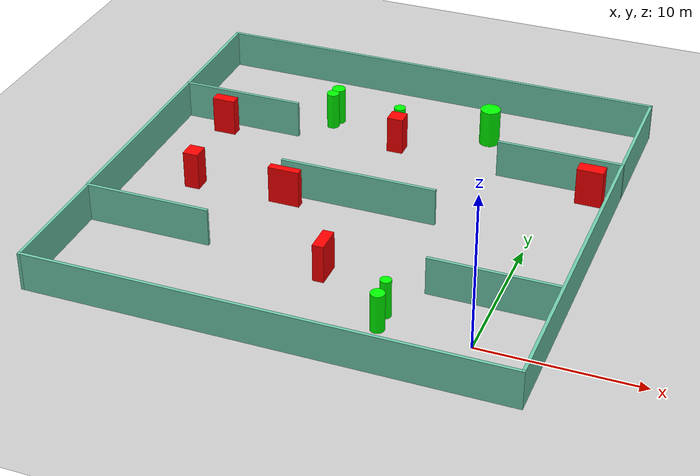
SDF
<sdf version="1.7">
 <world name="default">
  <light name="sun" type="directional">
   <pose>0 0 10 0 -0 0</pose>
   <diffuse>0.8 0.8 0.8 1</diffuse>
   <specular>0.2 0.2 0.2 1</specular>
   <attenuation>
    <range>1000</range>
    <constant>0.9</constant>
    <linear>0.01</linear>
    <quadratic>0.001</quadratic>
   </attenuation>
   <direction>-0.5 0.1 -0.9</direction>
   <spot><inner_angle>0</inner_angle><outer_angle>0</outer_angle><falloff>0</falloff></spot>
  </light>
  <model name="ground_plane">
   <static>1</static>
   <link name="link">
    <collision name="collision">
     <geometry><plane><normal>0 0 1</normal><size>100 100</size></plane></geometry>
     <surface>
      <contact><collide_bitmask>65535</collide_bitmask></contact>
      <friction><ode><mu>100</mu><mu2>50</mu2></ode></friction>
     </surface>
    </collision>
    <visual name="visual">
     <cast_shadows>0</cast_shadows>
     <geometry><plane><normal>0 0 1</normal><size>100 100</size></plane></geometry>
     <material>
      <script><uri>file://media/materials/scripts/gazebo.material</uri><name>Gazebo/Grey</name></script>
     </material>
    </visual>
   </link>
  </model>
  <gravity>0 0 -9.8</gravity>
  <magnetic_field>6e-06 2.3e-05 -4.2e-05</magnetic_field>
  <atmosphere type="adiabatic"/>
  <physics type="ode">
   <max_step_size>0.001</max_step_size>
   <real_time_factor>1</real_time_factor>
   <real_time_update_rate>1000</real_time_update_rate>
  </physics>
  <scene><ambient>0.4 0.4 0.4 1</ambient><background>0.7 0.7 0.7 1</background><shadows>1</shadows></scene>
  <spherical_coordinates>
   <surface_model>EARTH_WGS84</surface_model>
   <latitude_deg>0</latitude_deg>
   <longitude_deg>0</longitude_deg>
   <elevation>0</elevation>
   <heading_deg>0</heading_deg>
  </spherical_coordinates>
  <model name="my_base_walls">
   <link name="Wall_10">
    <collision name="Wall_10_Collision">
     <geometry><box><size>8.2 0.2 2.5</size></box></geometry>
     <pose>0 0 1.25 0 -0 0</pose>
    </collision>
    <visual name="Wall_10_Visual">
     <pose>0 0 1.25 0 -0 0</pose>
     <geometry><box><size>8.2 0.2 2.5</size></box></geometry>
     <material>
      <script><uri>file://media/materials/scripts/gazebo.material</uri><name>Gazebo/Grey</name></script>
      <ambient>0.435294 0.796078 0.67451 1</ambient>
     </material>
     <meta><layer>0</layer></meta>
    </visual>
    <pose>-11 -7 0 0 -0 0</pose>
   </link>
   <link name="Wall_12">
    <collision name="Wall_12_Collision">
     <geometry><box><size>8.2 0.2 2.5</size></box></geometry>
     <pose>0 0 1.25 0 -0 0</pose>
    </collision>
    <visual name="Wall_12_Visual">
     <pose>0 0 1.25 0 -0 0</pose>
     <geometry><box><size>8.2 0.2 2.5</size></box></geometry>
     <material>
      <script><uri>file://media/materials/scripts/gazebo.material</uri><name>Gazebo/Grey</name></script>
      <ambient>0.435294 0.796078 0.67451 1</ambient>
     </material>
     <meta><layer>0</layer></meta>
    </visual>
    <pose>-11 7 0 0 -0 0</pose>
   </link>
   <link name="Wall_14">
    <collision name="Wall_14_Collision">
     <geometry><box><size>8.2 0.2 2.5</size></box></geometry>
     <pose>0 0 1.25 0 -0 0</pose>
    </collision>
    <visual name="Wall_14_Visual">
     <pose>0 0 1.25 0 -0 0</pose>
     <geometry><box><size>8.2 0.2 2.5</size></box></geometry>
     <material>
      <script><uri>file://media/materials/scripts/gazebo.material</uri><name>Gazebo/Grey</name></script>
      <ambient>0.435294 0.796078 0.67451 1</ambient>
     </material>
     <meta><layer>0</layer></meta>
    </visual>
    <pose>11 7 0 0 -0 3.14159</pose>
   </link>
   <link name="Wall_16">
    <collision name="Wall_16_Collision">
     <geometry><box><size>10.2 0.2 2.5</size></box></geometry>
     <pose>0 0 1.25 0 -0 0</pose>
    </collision>
    <visual name="Wall_16_Visual">
     <pose>0 0 1.25 0 -0 0</pose>
     <geometry><box><size>10.2 0.2 2.5</size></box></geometry>
     <material>
      <script><uri>file://media/materials/scripts/gazebo.material</uri><name>Gazebo/Grey</name></script>
      <ambient>0.435294 0.796078 0.67451 1</ambient>
     </material>
     <meta><layer>0</layer></meta>
    </visual>
    <pose>0 0 0 0 -0 3.14159</pose>
   </link>
   <link name="Wall_2">
    <collision name="Wall_2_Collision">
     <geometry><box><size>30.2 0.2 2.5</size></box></geometry>
     <pose>0 0 1.25 0 -0 0</pose>
    </collision>
    <visual name="Wall_2_Visual">
     <pose>0 0 1.25 0 -0 0</pose>
     <geometry><box><size>30.2 0.2 2.5</size></box></geometry>
     <material>
      <script><uri>file://media/materials/scripts/gazebo.material</uri><name>Gazebo/Grey</name></script>
      <ambient>0.435294 0.796078 0.67451 1</ambient>
     </material>
     <meta><layer>0</layer></meta>
    </visual>
    <pose>0 -15 0 0 -0 3.14159</pose>
   </link>
   <link name="Wall_3">
    <collision name="Wall_3_Collision">
     <geometry><box><size>30.2 0.2 2.5</size></box></geometry>
     <pose>0 0 1.25 0 -0 0</pose>
    </collision>
    <visual name="Wall_3_Visual">
     <pose>0 0 1.25 0 -0 0</pose>
     <geometry><box><size>30.2 0.2 2.5</size></box></geometry>
     <material>
      <script><uri>file://media/materials/scripts/gazebo.material</uri><name>Gazebo/Grey</name></script>
      <ambient>0.435294 0.796078 0.67451 1</ambient>
     </material>
     <meta><layer>0</layer></meta>
    </visual>
    <pose>-15 0 0 0 -0 1.5708</pose>
   </link>
   <link name="Wall_4">
    <collision name="Wall_4_Collision">
     <geometry><box><size>30.2 0.2 2.5</size></box></geometry>
     <pose>0 0 1.25 0 -0 0</pose>
    </collision>
    <visual name="Wall_4_Visual">
     <pose>0 0 1.25 0 -0 0</pose>
     <geometry><box><size>30.2 0.2 2.5</size></box></geometry>
     <material>
      <script><uri>file://media/materials/scripts/gazebo.material</uri><name>Gazebo/Grey</name></script>
      <ambient>0.435294 0.796078 0.67451 1</ambient>
     </material>
     <meta><layer>0</layer></meta>
    </visual>
    <pose>0 15 0 0 -0 0</pose>
   </link>
   <link name="Wall_6">
    <collision name="Wall_6_Collision">
     <geometry><box><size>30.2 0.2 2.5</size></box></geometry>
     <pose>0 0 1.25 0 -0 0</pose>
    </collision>
    <visual name="Wall_6_Visual">
     <pose>0 0 1.25 0 -0 0</pose>
     <geometry><box><size>30.2 0.2 2.5</size></box></geometry>
     <material>
      <script><uri>file://media/materials/scripts/gazebo.material</uri><name>Gazebo/Grey</name></script>
      <ambient>0.435294 0.796078 0.67451 1</ambient>
     </material>
     <meta><layer>0</layer></meta>
    </visual>
    <pose>15 0 0 0 -0 1.5708</pose>
   </link>
   <link name="Wall_8">
    <collision name="Wall_8_Collision">
     <geometry><box><size>8.2 0.2 2.5</size></box></geometry>
     <pose>0 0 1.25 0 -0 0</pose>
    </collision>
    <visual name="Wall_8_Visual">
     <pose>0 0 1.25 0 -0 0</pose>
     <geometry><box><size>8.2 0.2 2.5</size></box></geometry>
     <material>
      <script><uri>file://media/materials/scripts/gazebo.material</uri><name>Gazebo/Grey</name></script>
      <ambient>0.435294 0.796078 0.67451 1</ambient>
     </material>
     <meta><layer>0</layer></meta>
    </visual>
    <pose>11 -7 0 0 -0 3.14159</pose>
   </link>
   <static>1</static>
   <pose>-11 11 0 0 -0 0</pose>
  </model>
  <model name="cylinder1">
   <static>1</static>
   <link name="link">
    <inertial>
     <mass>1</mass>
     <inertia><ixx>0.5</ixx><ixy>0</ixy><ixz>0</ixz><iyy>0.5</iyy><iyz>0</iyz><izz>1</izz></inertia>
    </inertial>
    <collision name="collision">
     <geometry><cylinder><radius>0.3825722446961194</radius><length>2.5</length></cylinder></geometry>
    </collision>
    <visual name="visual">
     <geometry><cylinder><radius>0.3825722446961194</radius><length>2.5</length></cylinder></geometry>
     <material>
      <ambient>0 1 0 1</ambient>
      <diffuse>0 1 0 1</diffuse>
      <specular>0.1 0.1 0.1 1</specular>
      <emissive>0 0 0 0</emissive>
     </material>
    </visual>
   </link>
   <pose>-11.424033114089617 19.85403700742111 1.25 0 0 0</pose>
  </model>
  <model name="cylinder2">
   <static>1</static>
   <link name="link">
    <inertial>
     <mass>1</mass>
     <inertia><ixx>0.5</ixx><ixy>0</ixy><ixz>0</ixz><iyy>0.5</iyy><iyz>0</iyz><izz>1</izz></inertia>
    </inertial>
    <collision name="collision">
     <geometry><cylinder><radius>0.3473478257045896</radius><length>2.5</length></cylinder></geometry>
    </collision>
    <visual name="visual">
     <geometry><cylinder><radius>0.3473478257045896</radius><length>2.5</length></cylinder></geometry>
     <material>
      <ambient>0 1 0 1</ambient>
      <diffuse>0 1 0 1</diffuse>
      <specular>0.1 0.1 0.1 1</specular>
      <emissive>0 0 0 0</emissive>
     </material>
    </visual>
   </link>
   <pose>-5.492375722989829 1.0938004104484946 1.25 0 0 0</pose>
  </model>
  <model name="cylinder3">
   <static>1</static>
   <link name="link">
    <inertial>
     <mass>1</mass>
     <inertia><ixx>0.5</ixx><ixy>0</ixy><ixz>0</ixz><iyy>0.5</iyy><iyz>0</iyz><izz>1</izz></inertia>
    </inertial>
    <collision name="collision">
     <geometry><cylinder><radius>0.4606696358041227</radius><length>2.5</length></cylinder></geometry>
    </collision>
    <visual name="visual">
     <geometry><cylinder><radius>0.4606696358041227</radius><length>2.5</length></cylinder></geometry>
     <material>
      <ambient>0 1 0 1</ambient>
      <diffuse>0 1 0 1</diffuse>
      <specular>0.1 0.1 0.1 1</specular>
      <emissive>0 0 0 0</emissive>
     </material>
    </visual>
   </link>
   <pose>-16.167739431562033 20.855487716860175 1.25 0 0 0</pose>
  </model>
  <model name="cylinder4">
   <static>1</static>
   <link name="link">
    <inertial>
     <mass>1</mass>
     <inertia><ixx>0.5</ixx><ixy>0</ixy><ixz>0</ixz><iyy>0.5</iyy><iyz>0</iyz><izz>1</izz></inertia>
    </inertial>
    <collision name="collision">
     <geometry><cylinder><radius>0.4400089946937346</radius><length>2.5</length></cylinder></geometry>
    </collision>
    <visual name="visual">
     <geometry><cylinder><radius>0.4400089946937346</radius><length>2.5</length></cylinder></geometry>
     <material>
      <ambient>0 1 0 1</ambient>
      <diffuse>0 1 0 1</diffuse>
      <specular>0.1 0.1 0.1 1</specular>
      <emissive>0 0 0 0</emissive>
     </material>
    </visual>
   </link>
   <pose>-5.471232350639035 -0.2596698004133082 1.25 0 0 0</pose>
  </model>
  <model name="cylinder5">
   <static>1</static>
   <link name="link">
    <inertial>
     <mass>1</mass>
     <inertia><ixx>0.5</ixx><ixy>0</ixy><ixz>0</ixz><iyy>0.5</iyy><iyz>0</iyz><izz>1</izz></inertia>
    </inertial>
    <collision name="collision">
     <geometry><cylinder><radius>0.4115569872702874</radius><length>2.5</length></cylinder></geometry>
    </collision>
    <visual name="visual">
     <geometry><cylinder><radius>0.4115569872702874</radius><length>2.5</length></cylinder></geometry>
     <material>
      <ambient>0 1 0 1</ambient>
      <diffuse>0 1 0 1</diffuse>
      <specular>0.1 0.1 0.1 1</specular>
      <emissive>0 0 0 0</emissive>
     </material>
    </visual>
   </link>
   <pose>-16.28116470168725 20.114030723866392 1.25 0 0 0</pose>
  </model>
  <model name="cylinder6">
   <static>1</static>
   <link name="link">
    <inertial>
     <mass>1</mass>
     <inertia><ixx>0.5</ixx><ixy>0</ixy><ixz>0</ixz><iyy>0.5</iyy><iyz>0</iyz><izz>1</izz></inertia>
    </inertial>
    <collision name="collision">
     <geometry><cylinder><radius>0.6670072689278654</radius><length>2.5</length></cylinder></geometry>
    </collision>
    <visual name="visual">
     <geometry><cylinder><radius>0.6670072689278654</radius><length>2.5</length></cylinder></geometry>
     <material>
      <ambient>0 1 0 1</ambient>
      <diffuse>0 1 0 1</diffuse>
      <specular>0.1 0.1 0.1 1</specular>
      <emissive>0 0 0 0</emissive>
     </material>
    </visual>
   </link>
   <pose>-5.763776569285463 21.804474145848303 1.25 0 0 0</pose>
  </model>
  <model name="box1">
   <static>1</static>
   <link name="link">
    <inertial>
     <mass>1</mass>
     <inertia><ixx>0.083</ixx><ixy>0</ixy><ixz>0</ixz><iyy>0.083</iyy><iyz>0</iyz><izz>0.083</izz></inertia>
    </inertial>
    <collision name="collision">
     <geometry><box><size>1.0136351139492406 1.0816992166552473 2.5</size></box></geometry>
    </collision>
    <visual name="visual">
     <geometry><box><size>1.0136351139492406 1.0816992166552473 2.5</size></box></geometry>
     <material>
      <ambient>1 0 0 1</ambient>
      <diffuse>1 0 0 1</diffuse>
      <specular>0.1 0.1 0.1 1</specular>
      <emissive>0 0 0 0</emissive>
     </material>
    </visual>
    <sensor name="my_contact" type="contact">
     <contact><collision>box_collision</collision><topic>__default_topic__</topic></contact>
    </sensor>
   </link>
   <pose>-21.72346201909431 10.000831650577334 1.25 0 0 0</pose>
  </model>
  <model name="box2">
   <static>1</static>
   <link name="link">
    <inertial>
     <mass>1</mass>
     <inertia><ixx>0.083</ixx><ixy>0</ixy><ixz>0</ixz><iyy>0.083</iyy><iyz>0</iyz><izz>0.083</izz></inertia>
    </inertial>
    <collision name="collision">
     <geometry><box><size>1.5137687943905946 0.7061115040590272 2.5</size></box></geometry>
    </collision>
    <visual name="visual">
     <geometry><box><size>1.5137687943905946 0.7061115040590272 2.5</size></box></geometry>
     <material>
      <ambient>1 0 0 1</ambient>
      <diffuse>1 0 0 1</diffuse>
      <specular>0.1 0.1 0.1 1</specular>
      <emissive>0 0 0 0</emissive>
     </material>
    </visual>
    <sensor name="my_contact" type="contact">
     <contact><collision>box_collision</collision><topic>__default_topic__</topic></contact>
    </sensor>
   </link>
   <pose>-22.744000433456527 16.916531144436796 1.25 0 0 0</pose>
  </model>
  <model name="box3">
   <static>1</static>
   <link name="link">
    <inertial>
     <mass>1</mass>
     <inertia><ixx>0.083</ixx><ixy>0</ixy><ixz>0</ixz><iyy>0.083</iyy><iyz>0</iyz><izz>0.083</izz></inertia>
    </inertial>
    <collision name="collision">
     <geometry><box><size>1.7103161509343474 0.8833281087895224 2.5</size></box></geometry>
    </collision>
    <visual name="visual">
     <geometry><box><size>1.7103161509343474 0.8833281087895224 2.5</size></box></geometry>
     <material>
      <ambient>1 0 0 1</ambient>
      <diffuse>1 0 0 1</diffuse>
      <specular>0.1 0.1 0.1 1</specular>
      <emissive>0 0 0 0</emissive>
     </material>
    </visual>
    <sensor name="my_contact" type="contact">
     <contact><collision>box_collision</collision><topic>__default_topic__</topic></contact>
    </sensor>
   </link>
   <pose>2.323348549781194 16.89769574267387 1.25 0 0 0</pose>
  </model>
  <model name="box4">
   <static>1</static>
   <link name="link">
    <inertial>
     <mass>1</mass>
     <inertia><ixx>0.083</ixx><ixy>0</ixy><ixz>0</ixz><iyy>0.083</iyy><iyz>0</iyz><izz>0.083</izz></inertia>
    </inertial>
    <collision name="collision">
     <geometry><box><size>1.0617500384561975 1.0116394722435833 2.5</size></box></geometry>
    </collision>
    <visual name="visual">
     <geometry><box><size>1.0617500384561975 1.0116394722435833 2.5</size></box></geometry>
     <material>
      <ambient>1 0 0 1</ambient>
      <diffuse>1 0 0 1</diffuse>
      <specular>0.1 0.1 0.1 1</specular>
      <emissive>0 0 0 0</emissive>
     </material>
    </visual>
    <sensor name="my_contact" type="contact">
     <contact><collision>box_collision</collision><topic>__default_topic__</topic></contact>
    </sensor>
   </link>
   <pose>-11.203385821593864 18.760733716540262 1.25 0 0 0</pose>
  </model>
  <model name="box5">
   <static>1</static>
   <link name="link">
    <inertial>
     <mass>1</mass>
     <inertia><ixx>0.083</ixx><ixy>0</ixy><ixz>0</ixz><iyy>0.083</iyy><iyz>0</iyz><izz>0.083</izz></inertia>
    </inertial>
    <collision name="collision">
     <geometry><box><size>0.7121265364763841 1.7241942186350958 2.5</size></box></geometry>
    </collision>
    <visual name="visual">
     <geometry><box><size>0.7121265364763841 1.7241942186350958 2.5</size></box></geometry>
     <material>
      <ambient>1 0 0 1</ambient>
      <diffuse>1 0 0 1</diffuse>
      <specular>0.1 0.1 0.1 1</specular>
      <emissive>0 0 0 0</emissive>
     </material>
    </visual>
    <sensor name="my_contact" type="contact">
     <contact><collision>box_collision</collision><topic>__default_topic__</topic></contact>
    </sensor>
   </link>
   <pose>-10.30517236732253 3.6336722366640455 1.25 0 0 0</pose>
  </model>
  <model name="box6">
   <static>1</static>
   <link name="link">
    <inertial>
     <mass>1</mass>
     <inertia><ixx>0.083</ixx><ixy>0</ixy><ixz>0</ixz><iyy>0.083</iyy><iyz>0</iyz><izz>0.083</izz></inertia>
    </inertial>
    <collision name="collision">
     <geometry><box><size>2.051323211623191 0.5035540452973777 2.5</size></box></geometry>
    </collision>
    <visual name="visual">
     <geometry><box><size>2.051323211623191 0.5035540452973777 2.5</size></box></geometry>
     <material>
      <ambient>1 0 0 1</ambient>
      <diffuse>1 0 0 1</diffuse>
      <specular>0.1 0.1 0.1 1</specular>
      <emissive>0 0 0 0</emissive>
     </material>
    </visual>
    <sensor name="my_contact" type="contact">
     <contact><collision>box_collision</collision><topic>__default_topic__</topic></contact>
    </sensor>
   </link>
   <pose>-15.49598499485589 10.015919532017021 1.25 0 0 0</pose>
  </model>
 </world>
</sdf>
